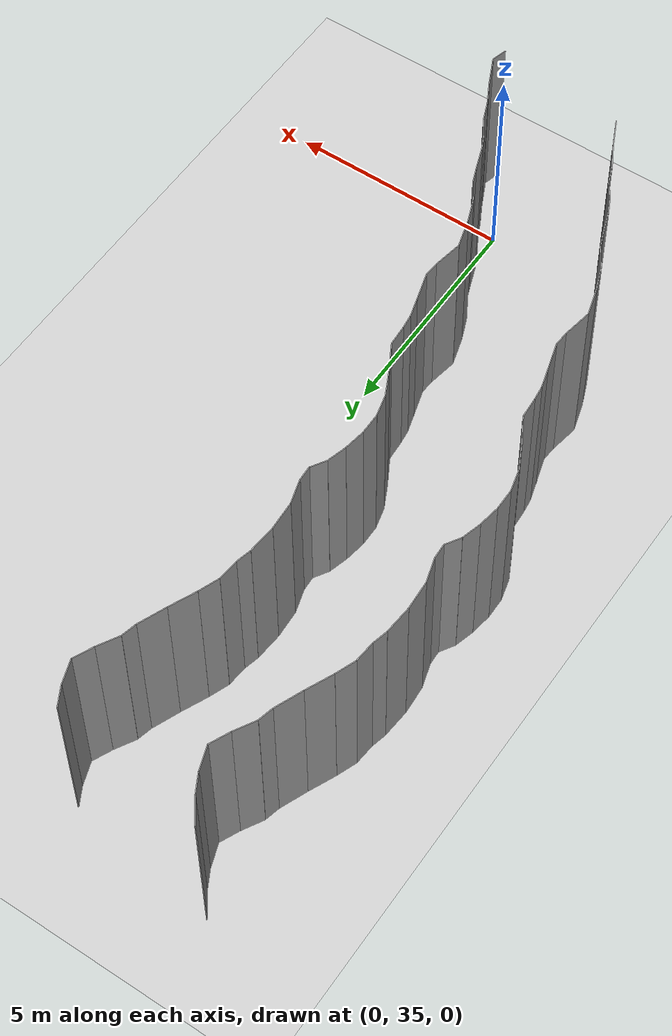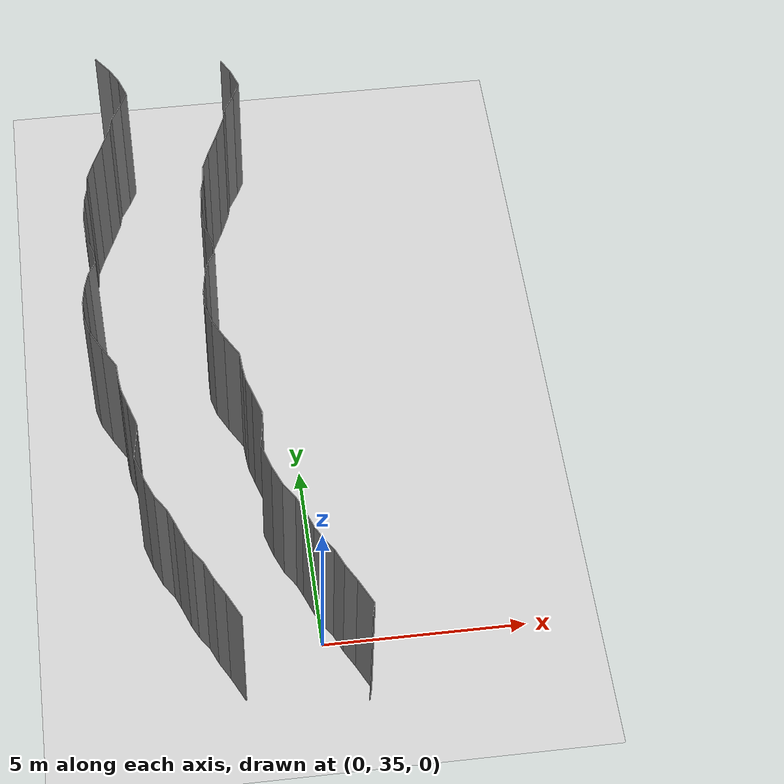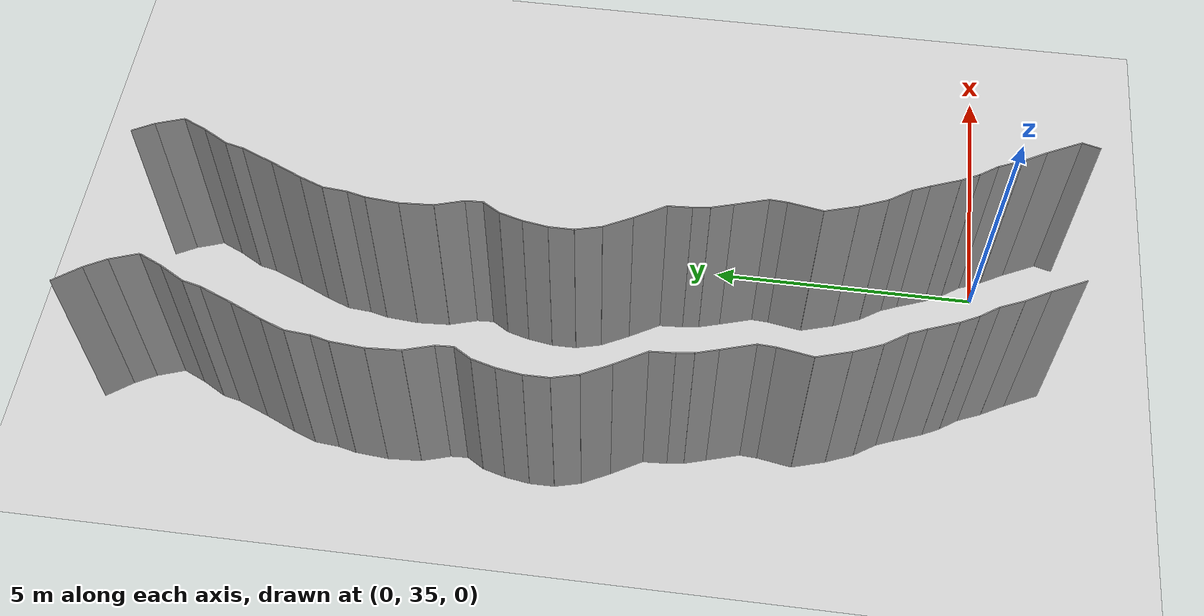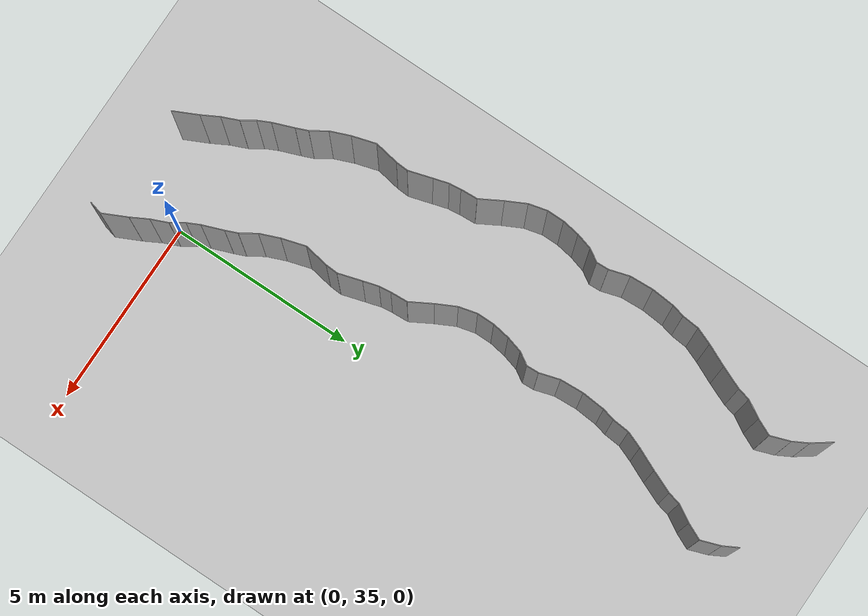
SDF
<sdf version="1.6">
 <world name="default">
  <model name="ground_plane">
   <static>1</static>
   <link name="link">
    <collision name="collision">
     <geometry><plane><normal>0 0 1</normal><size>200 200</size></plane></geometry>
     <surface><friction><ode><mu>100</mu><mu2>50</mu2></ode></friction></surface>
    </collision>
    <visual name="visual">
     <cast_shadows>0</cast_shadows>
     <geometry><plane><normal>0 0 1</normal><size>200 200</size></plane></geometry>
     <material>
      <script><uri>file://media/materials/scripts/gazebo.material</uri><name>Gazebo/Grey</name></script>
     </material>
    </visual>
   </link>
   <pose>0 100 0 0 -0 0</pose>
  </model>
  <model name="wall_149">
   <static>1</static>
   <pose>0.9881427926999038 33.55073530533225 2 0 0 -0.2570809462388972</pose>
   <link name="link">
    <collision name="collision"><geometry><box><size>0.02 0.351446563598 4</size></box></geometry></collision>
    <visual name="visual">
     <material>
      <script><name>Gazebo/Grey</name><uri>file://media/materials/scripts/gazebo.material</uri></script>
     </material>
     <geometry><box><size>0.02 0.351446563598 4</size></box></geometry>
    </visual>
   </link>
  </model>
  <model name="wall_150">
   <static>1</static>
   <pose>-2.1199859961516934 34.03507222280269 2 0 0 0.4524238444799643</pose>
   <link name="link">
    <collision name="collision"><geometry><box><size>0.02 0.699114944752 4</size></box></geometry></collision>
    <visual name="visual">
     <material>
      <script><name>Gazebo/Grey</name><uri>file://media/materials/scripts/gazebo.material</uri></script>
     </material>
     <geometry><box><size>0.02 0.699114944752 4</size></box></geometry>
    </visual>
   </link>
  </model>
  <model name="wall_151">
   <static>1</static>
   <pose>0.8800140038483066 34.03507222280269 2 0 0 0.4524238444799643</pose>
   <link name="link">
    <collision name="collision"><geometry><box><size>0.02 0.699114944752 4</size></box></geometry></collision>
    <visual name="visual">
     <material>
      <script><name>Gazebo/Grey</name><uri>file://media/materials/scripts/gazebo.material</uri></script>
     </material>
     <geometry><box><size>0.02 0.699114944752 4</size></box></geometry>
    </visual>
   </link>
  </model>
  <model name="wall_152">
   <static>1</static>
   <pose>-2.393562664950325 34.56891271330489 2 0 0 0.5030886825551388</pose>
   <link name="link">
    <collision name="collision"><geometry><box><size>0.02 0.500976009871 4</size></box></geometry></collision>
    <visual name="visual">
     <material>
      <script><name>Gazebo/Grey</name><uri>file://media/materials/scripts/gazebo.material</uri></script>
     </material>
     <geometry><box><size>0.02 0.500976009871 4</size></box></geometry>
    </visual>
   </link>
  </model>
  <model name="wall_153">
   <static>1</static>
   <pose>0.6064373350496748 34.56891271330489 2 0 0 0.5030886825551388</pose>
   <link name="link">
    <collision name="collision"><geometry><box><size>0.02 0.500976009871 4</size></box></geometry></collision>
    <visual name="visual">
     <material>
      <script><name>Gazebo/Grey</name><uri>file://media/materials/scripts/gazebo.material</uri></script>
     </material>
     <geometry><box><size>0.02 0.500976009871 4</size></box></geometry>
    </visual>
   </link>
  </model>
  <model name="wall_154">
   <static>1</static>
   <pose>-2.606694891788812 35.00484777843814 2 0 0 0.4032711366368982</pose>
   <link name="link">
    <collision name="collision"><geometry><box><size>0.02 0.470726922982 4</size></box></geometry></collision>
    <visual name="visual">
     <material>
      <script><name>Gazebo/Grey</name><uri>file://media/materials/scripts/gazebo.material</uri></script>
     </material>
     <geometry><box><size>0.02 0.470726922982 4</size></box></geometry>
    </visual>
   </link>
  </model>
  <model name="wall_155">
   <static>1</static>
   <pose>0.3933051082111878 35.00484777843814 2 0 0 0.4032711366368982</pose>
   <link name="link">
    <collision name="collision"><geometry><box><size>0.02 0.470726922982 4</size></box></geometry></collision>
    <visual name="visual">
     <material>
      <script><name>Gazebo/Grey</name><uri>file://media/materials/scripts/gazebo.material</uri></script>
     </material>
     <geometry><box><size>0.02 0.470726922982 4</size></box></geometry>
    </visual>
   </link>
  </model>
  <model name="wall_156">
   <static>1</static>
   <pose>-2.8125337059370685 35.38882786084507 2 0 0 0.5954493578572179</pose>
   <link name="link">
    <collision name="collision"><geometry><box><size>0.02 0.404632569632 4</size></box></geometry></collision>
    <visual name="visual">
     <material>
      <script><name>Gazebo/Grey</name><uri>file://media/materials/scripts/gazebo.material</uri></script>
     </material>
     <geometry><box><size>0.02 0.404632569632 4</size></box></geometry>
    </visual>
   </link>
  </model>
  <model name="wall_157">
   <static>1</static>
   <pose>0.18746629406293147 35.38882786084507 2 0 0 0.5954493578572179</pose>
   <link name="link">
    <collision name="collision"><geometry><box><size>0.02 0.404632569632 4</size></box></geometry></collision>
    <visual name="visual">
     <material>
      <script><name>Gazebo/Grey</name><uri>file://media/materials/scripts/gazebo.material</uri></script>
     </material>
     <geometry><box><size>0.02 0.404632569632 4</size></box></geometry>
    </visual>
   </link>
  </model>
  <model name="wall_158">
   <static>1</static>
   <pose>-3.006206348246915 35.71882686516212 2 0 0 0.4584467388995591</pose>
   <link name="link">
    <collision name="collision"><geometry><box><size>0.02 0.36242806749 4</size></box></geometry></collision>
    <visual name="visual">
     <material>
      <script><name>Gazebo/Grey</name><uri>file://media/materials/scripts/gazebo.material</uri></script>
     </material>
     <geometry><box><size>0.02 0.36242806749 4</size></box></geometry>
    </visual>
   </link>
  </model>
  <model name="wall_159">
   <static>1</static>
   <pose>-0.006206348246915017 35.71882686516212 2 0 0 0.4584467388995591</pose>
   <link name="link">
    <collision name="collision"><geometry><box><size>0.02 0.36242806749 4</size></box></geometry></collision>
    <visual name="visual">
     <material>
      <script><name>Gazebo/Grey</name><uri>file://media/materials/scripts/gazebo.material</uri></script>
     </material>
     <geometry><box><size>0.02 0.36242806749 4</size></box></geometry>
    </visual>
   </link>
  </model>
  <model name="wall_160">
   <static>1</static>
   <pose>-3.1899112311044293 36.154948247174794 2 0 0 0.3616522814091052</pose>
   <link name="link">
    <collision name="collision"><geometry><box><size>0.02 0.585085822002 4</size></box></geometry></collision>
    <visual name="visual">
     <material>
      <script><name>Gazebo/Grey</name><uri>file://media/materials/scripts/gazebo.material</uri></script>
     </material>
     <geometry><box><size>0.02 0.585085822002 4</size></box></geometry>
    </visual>
   </link>
  </model>
  <model name="wall_161">
   <static>1</static>
   <pose>-0.1899112311044293 36.154948247174794 2 0 0 0.3616522814091052</pose>
   <link name="link">
    <collision name="collision"><geometry><box><size>0.02 0.585085822002 4</size></box></geometry></collision>
    <visual name="visual">
     <material>
      <script><name>Gazebo/Grey</name><uri>file://media/materials/scripts/gazebo.material</uri></script>
     </material>
     <geometry><box><size>0.02 0.585085822002 4</size></box></geometry>
    </visual>
   </link>
  </model>
  <model name="wall_162">
   <static>1</static>
   <pose>-3.357015611934183 36.582454859513454 2 0 0 0.3918924178580606</pose>
   <link name="link">
    <collision name="collision"><geometry><box><size>0.02 0.333021621268 4</size></box></geometry></collision>
    <visual name="visual">
     <material>
      <script><name>Gazebo/Grey</name><uri>file://media/materials/scripts/gazebo.material</uri></script>
     </material>
     <geometry><box><size>0.02 0.333021621268 4</size></box></geometry>
    </visual>
   </link>
  </model>
  <model name="wall_163">
   <static>1</static>
   <pose>-0.35701561193418296 36.582454859513454 2 0 0 0.3918924178580606</pose>
   <link name="link">
    <collision name="collision"><geometry><box><size>0.02 0.333021621268 4</size></box></geometry></collision>
    <visual name="visual">
     <material>
      <script><name>Gazebo/Grey</name><uri>file://media/materials/scripts/gazebo.material</uri></script>
     </material>
     <geometry><box><size>0.02 0.333021621268 4</size></box></geometry>
    </visual>
   </link>
  </model>
  <model name="wall_164">
   <static>1</static>
   <pose>-3.552840360431091 36.93900870756451 2 0 0 0.5780891512333</pose>
   <link name="link">
    <collision name="collision"><geometry><box><size>0.02 0.483975057196 4</size></box></geometry></collision>
    <visual name="visual">
     <material>
      <script><name>Gazebo/Grey</name><uri>file://media/materials/scripts/gazebo.material</uri></script>
     </material>
     <geometry><box><size>0.02 0.483975057196 4</size></box></geometry>
    </visual>
   </link>
  </model>
  <model name="wall_165">
   <static>1</static>
   <pose>-0.552840360431091 36.93900870756451 2 0 0 0.5780891512333</pose>
   <link name="link">
    <collision name="collision"><geometry><box><size>0.02 0.483975057196 4</size></box></geometry></collision>
    <visual name="visual">
     <material>
      <script><name>Gazebo/Grey</name><uri>file://media/materials/scripts/gazebo.material</uri></script>
     </material>
     <geometry><box><size>0.02 0.483975057196 4</size></box></geometry>
    </visual>
   </link>
  </model>
  <model name="wall_166">
   <static>1</static>
   <pose>-3.788069837768711 37.39665629757938 2 0 0 0.38391350798223306</pose>
   <link name="link">
    <collision name="collision"><geometry><box><size>0.02 0.549998690865 4</size></box></geometry></collision>
    <visual name="visual">
     <material>
      <script><name>Gazebo/Grey</name><uri>file://media/materials/scripts/gazebo.material</uri></script>
     </material>
     <geometry><box><size>0.02 0.549998690865 4</size></box></geometry>
    </visual>
   </link>
  </model>
  <model name="wall_167">
   <static>1</static>
   <pose>-0.788069837768711 37.39665629757938 2 0 0 0.38391350798223306</pose>
   <link name="link">
    <collision name="collision"><geometry><box><size>0.02 0.549998690865 4</size></box></geometry></collision>
    <visual name="visual">
     <material>
      <script><name>Gazebo/Grey</name><uri>file://media/materials/scripts/gazebo.material</uri></script>
     </material>
     <geometry><box><size>0.02 0.549998690865 4</size></box></geometry>
    </visual>
   </link>
  </model>
  <model name="wall_168">
   <static>1</static>
   <pose>-3.982984754541868 37.96073117305342 2 0 0 0.2890366641505498</pose>
   <link name="link">
    <collision name="collision"><geometry><box><size>0.02 0.64494054875 4</size></box></geometry></collision>
    <visual name="visual">
     <material>
      <script><name>Gazebo/Grey</name><uri>file://media/materials/scripts/gazebo.material</uri></script>
     </material>
     <geometry><box><size>0.02 0.64494054875 4</size></box></geometry>
    </visual>
   </link>
  </model>
  <model name="wall_169">
   <static>1</static>
   <pose>-0.9829847545418682 37.96073117305342 2 0 0 0.2890366641505498</pose>
   <link name="link">
    <collision name="collision"><geometry><box><size>0.02 0.64494054875 4</size></box></geometry></collision>
    <visual name="visual">
     <material>
      <script><name>Gazebo/Grey</name><uri>file://media/materials/scripts/gazebo.material</uri></script>
     </material>
     <geometry><box><size>0.02 0.64494054875 4</size></box></geometry>
    </visual>
   </link>
  </model>
  <model name="wall_170">
   <static>1</static>
   <pose>-4.020530859967856 38.59331555278718 2 0 0 -0.16650840684087173</pose>
   <link name="link">
    <collision name="collision"><geometry><box><size>0.02 0.656054635602 4</size></box></geometry></collision>
    <visual name="visual">
     <material>
      <script><name>Gazebo/Grey</name><uri>file://media/materials/scripts/gazebo.material</uri></script>
     </material>
     <geometry><box><size>0.02 0.656054635602 4</size></box></geometry>
    </visual>
   </link>
  </model>
  <model name="wall_171">
   <static>1</static>
   <pose>-1.020530859967856 38.59331555278718 2 0 0 -0.16650840684087173</pose>
   <link name="link">
    <collision name="collision"><geometry><box><size>0.02 0.656054635602 4</size></box></geometry></collision>
    <visual name="visual">
     <material>
      <script><name>Gazebo/Grey</name><uri>file://media/materials/scripts/gazebo.material</uri></script>
     </material>
     <geometry><box><size>0.02 0.656054635602 4</size></box></geometry>
    </visual>
   </link>
  </model>
  <model name="wall_172">
   <static>1</static>
   <pose>-3.957272927944063 39.07762225691756 2 0 0 -0.055228413160303275</pose>
   <link name="link">
    <collision name="collision"><geometry><box><size>0.02 0.322123495496 4</size></box></geometry></collision>
    <visual name="visual">
     <material>
      <script><name>Gazebo/Grey</name><uri>file://media/materials/scripts/gazebo.material</uri></script>
     </material>
     <geometry><box><size>0.02 0.322123495496 4</size></box></geometry>
    </visual>
   </link>
  </model>
  <model name="wall_173">
   <static>1</static>
   <pose>-0.957272927944063 39.07762225691756 2 0 0 -0.055228413160303275</pose>
   <link name="link">
    <collision name="collision"><geometry><box><size>0.02 0.322123495496 4</size></box></geometry></collision>
    <visual name="visual">
     <material>
      <script><name>Gazebo/Grey</name><uri>file://media/materials/scripts/gazebo.material</uri></script>
     </material>
     <geometry><box><size>0.02 0.322123495496 4</size></box></geometry>
    </visual>
   </link>
  </model>
  <model name="wall_174">
   <static>1</static>
   <pose>-4.041034677507834 39.54683551900046 2 0 0 0.2918532556658118</pose>
   <link name="link">
    <collision name="collision"><geometry><box><size>0.02 0.644028669878 4</size></box></geometry></collision>
    <visual name="visual">
     <material>
      <script><name>Gazebo/Grey</name><uri>file://media/materials/scripts/gazebo.material</uri></script>
     </material>
     <geometry><box><size>0.02 0.644028669878 4</size></box></geometry>
    </visual>
   </link>
  </model>
  <model name="wall_175">
   <static>1</static>
   <pose>-1.0410346775078336 39.54683551900046 2 0 0 0.2918532556658118</pose>
   <link name="link">
    <collision name="collision"><geometry><box><size>0.02 0.644028669878 4</size></box></geometry></collision>
    <visual name="visual">
     <material>
      <script><name>Gazebo/Grey</name><uri>file://media/materials/scripts/gazebo.material</uri></script>
     </material>
     <geometry><box><size>0.02 0.644028669878 4</size></box></geometry>
    </visual>
   </link>
  </model>
  <model name="wall_176">
   <static>1</static>
   <pose>-4.192084598840093 40.05443277690268 2 0 0 0.2851697461740518</pose>
   <link name="link">
    <collision name="collision"><geometry><box><size>0.02 0.415167328733 4</size></box></geometry></collision>
    <visual name="visual">
     <material>
      <script><name>Gazebo/Grey</name><uri>file://media/materials/scripts/gazebo.material</uri></script>
     </material>
     <geometry><box><size>0.02 0.415167328733 4</size></box></geometry>
    </visual>
   </link>
  </model>
  <model name="wall_177">
   <static>1</static>
   <pose>-1.1920845988400934 40.05443277690268 2 0 0 0.2851697461740518</pose>
   <link name="link">
    <collision name="collision"><geometry><box><size>0.02 0.415167328733 4</size></box></geometry></collision>
    <visual name="visual">
     <material>
      <script><name>Gazebo/Grey</name><uri>file://media/materials/scripts/gazebo.material</uri></script>
     </material>
     <geometry><box><size>0.02 0.415167328733 4</size></box></geometry>
    </visual>
   </link>
  </model>
  <model name="wall_178">
   <static>1</static>
   <pose>-4.270150940953661 40.4105312934876 2 0 0 0.12470980048638405</pose>
   <link name="link">
    <collision name="collision"><geometry><box><size>0.02 0.31625276847 4</size></box></geometry></collision>
    <visual name="visual">
     <material>
      <script><name>Gazebo/Grey</name><uri>file://media/materials/scripts/gazebo.material</uri></script>
     </material>
     <geometry><box><size>0.02 0.31625276847 4</size></box></geometry>
    </visual>
   </link>
  </model>
  <model name="wall_179">
   <static>1</static>
   <pose>-1.2701509409536609 40.4105312934876 2 0 0 0.12470980048638405</pose>
   <link name="link">
    <collision name="collision"><geometry><box><size>0.02 0.31625276847 4</size></box></geometry></collision>
    <visual name="visual">
     <material>
      <script><name>Gazebo/Grey</name><uri>file://media/materials/scripts/gazebo.material</uri></script>
     </material>
     <geometry><box><size>0.02 0.31625276847 4</size></box></geometry>
    </visual>
   </link>
  </model>
  <model name="wall_180">
   <static>1</static>
   <pose>-4.303651819095543 40.79109403262944 2 0 0 0.06176419345149802</pose>
   <link name="link">
    <collision name="collision"><geometry><box><size>0.02 0.448183386925 4</size></box></geometry></collision>
    <visual name="visual">
     <material>
      <script><name>Gazebo/Grey</name><uri>file://media/materials/scripts/gazebo.material</uri></script>
     </material>
     <geometry><box><size>0.02 0.448183386925 4</size></box></geometry>
    </visual>
   </link>
  </model>
  <model name="wall_181">
   <static>1</static>
   <pose>-1.3036518190955428 40.79109403262944 2 0 0 0.06176419345149802</pose>
   <link name="link">
    <collision name="collision"><geometry><box><size>0.02 0.448183386925 4</size></box></geometry></collision>
    <visual name="visual">
     <material>
      <script><name>Gazebo/Grey</name><uri>file://media/materials/scripts/gazebo.material</uri></script>
     </material>
     <geometry><box><size>0.02 0.448183386925 4</size></box></geometry>
    </visual>
   </link>
  </model>
  <model name="wall_182">
   <static>1</static>
   <pose>-4.479827330198589 41.298478551855204 2 0 0 0.5197243043052254</pose>
   <link name="link">
    <collision name="collision"><geometry><box><size>0.02 0.653766043913 4</size></box></geometry></collision>
    <visual name="visual">
     <material>
      <script><name>Gazebo/Grey</name><uri>file://media/materials/scripts/gazebo.material</uri></script>
     </material>
     <geometry><box><size>0.02 0.653766043913 4</size></box></geometry>
    </visual>
   </link>
  </model>
  <model name="wall_183">
   <static>1</static>
   <pose>-1.4798273301985887 41.298478551855204 2 0 0 0.5197243043052254</pose>
   <link name="link">
    <collision name="collision"><geometry><box><size>0.02 0.653766043913 4</size></box></geometry></collision>
    <visual name="visual">
     <material>
      <script><name>Gazebo/Grey</name><uri>file://media/materials/scripts/gazebo.material</uri></script>
     </material>
     <geometry><box><size>0.02 0.653766043913 4</size></box></geometry>
    </visual>
   </link>
  </model>
  <model name="wall_184">
   <static>1</static>
   <pose>-4.7724770303118715 41.838417724788464 2 0 0 0.4704829076977436</pose>
   <link name="link">
    <collision name="collision"><geometry><box><size>0.02 0.57490143647 4</size></box></geometry></collision>
    <visual name="visual">
     <material>
      <script><name>Gazebo/Grey</name><uri>file://media/materials/scripts/gazebo.material</uri></script>
     </material>
     <geometry><box><size>0.02 0.57490143647 4</size></box></geometry>
    </visual>
   </link>
  </model>
  <model name="wall_185">
   <static>1</static>
   <pose>-1.7724770303118715 41.838417724788464 2 0 0 0.4704829076977436</pose>
   <link name="link">
    <collision name="collision"><geometry><box><size>0.02 0.57490143647 4</size></box></geometry></collision>
    <visual name="visual">
     <material>
      <script><name>Gazebo/Grey</name><uri>file://media/materials/scripts/gazebo.material</uri></script>
     </material>
     <geometry><box><size>0.02 0.57490143647 4</size></box></geometry>
    </visual>
   </link>
  </model>
  <model name="wall_186">
   <static>1</static>
   <pose>-4.964001399339858 42.33403192623361 2 0 0 0.25035493327031966</pose>
   <link name="link">
    <collision name="collision"><geometry><box><size>0.02 0.494197123625 4</size></box></geometry></collision>
    <visual name="visual">
     <material>
      <script><name>Gazebo/Grey</name><uri>file://media/materials/scripts/gazebo.material</uri></script>
     </material>
     <geometry><box><size>0.02 0.494197123625 4</size></box></geometry>
    </visual>
   </link>
  </model>
  <model name="wall_187">
   <static>1</static>
   <pose>-1.9640013993398577 42.33403192623361 2 0 0 0.25035493327031966</pose>
   <link name="link">
    <collision name="collision"><geometry><box><size>0.02 0.494197123625 4</size></box></geometry></collision>
    <visual name="visual">
     <material>
      <script><name>Gazebo/Grey</name><uri>file://media/materials/scripts/gazebo.material</uri></script>
     </material>
     <geometry><box><size>0.02 0.494197123625 4</size></box></geometry>
    </visual>
   </link>
  </model>
  <model name="wall_188">
   <static>1</static>
   <pose>-5.026448728286464 42.80450628569534 2 0 0 0.005319308876662457</pose>
   <link name="link">
    <collision name="collision"><geometry><box><size>0.02 0.46216495209 4</size></box></geometry></collision>
    <visual name="visual">
     <material>
      <script><name>Gazebo/Grey</name><uri>file://media/materials/scripts/gazebo.material</uri></script>
     </material>
     <geometry><box><size>0.02 0.46216495209 4</size></box></geometry>
    </visual>
   </link>
  </model>
  <model name="wall_189">
   <static>1</static>
   <pose>-2.0264487282864643 42.80450628569534 2 0 0 0.005319308876662457</pose>
   <link name="link">
    <collision name="collision"><geometry><box><size>0.02 0.46216495209 4</size></box></geometry></collision>
    <visual name="visual">
     <material>
      <script><name>Gazebo/Grey</name><uri>file://media/materials/scripts/gazebo.material</uri></script>
     </material>
     <geometry><box><size>0.02 0.46216495209 4</size></box></geometry>
    </visual>
   </link>
  </model>
  <model name="wall_190">
   <static>1</static>
   <pose>-4.99145490060217 43.268151554785206 2 0 0 -0.15451221751109798</pose>
   <link name="link">
    <collision name="collision"><geometry><box><size>0.02 0.470740185547 4</size></box></geometry></collision>
    <visual name="visual">
     <material>
      <script><name>Gazebo/Grey</name><uri>file://media/materials/scripts/gazebo.material</uri></script>
     </material>
     <geometry><box><size>0.02 0.470740185547 4</size></box></geometry>
    </visual>
   </link>
  </model>
  <model name="wall_191">
   <static>1</static>
   <pose>-1.9914549006021698 43.268151554785206 2 0 0 -0.15451221751109798</pose>
   <link name="link">
    <collision name="collision"><geometry><box><size>0.02 0.470740185547 4</size></box></geometry></collision>
    <visual name="visual">
     <material>
      <script><name>Gazebo/Grey</name><uri>file://media/materials/scripts/gazebo.material</uri></script>
     </material>
     <geometry><box><size>0.02 0.470740185547 4</size></box></geometry>
    </visual>
   </link>
  </model>
  <model name="wall_192">
   <static>1</static>
   <pose>-4.896239606016891 43.71426239648721 2 0 0 -0.2695302527752205</pose>
   <link name="link">
    <collision name="collision"><geometry><box><size>0.02 0.443086723637 4</size></box></geometry></collision>
    <visual name="visual">
     <material>
      <script><name>Gazebo/Grey</name><uri>file://media/materials/scripts/gazebo.material</uri></script>
     </material>
     <geometry><box><size>0.02 0.443086723637 4</size></box></geometry>
    </visual>
   </link>
  </model>
  <model name="wall_193">
   <static>1</static>
   <pose>-1.8962396060168913 43.71426239648721 2 0 0 -0.2695302527752205</pose>
   <link name="link">
    <collision name="collision"><geometry><box><size>0.02 0.443086723637 4</size></box></geometry></collision>
    <visual name="visual">
     <material>
      <script><name>Gazebo/Grey</name><uri>file://media/materials/scripts/gazebo.material</uri></script>
     </material>
     <geometry><box><size>0.02 0.443086723637 4</size></box></geometry>
    </visual>
   </link>
  </model>
  <model name="wall_194">
   <static>1</static>
   <pose>-4.739578070606712 44.086898648561856 2 0 0 -0.5505911709922717</pose>
   <link name="link">
    <collision name="collision"><geometry><box><size>0.02 0.3733597802 4</size></box></geometry></collision>
    <visual name="visual">
     <material>
      <script><name>Gazebo/Grey</name><uri>file://media/materials/scripts/gazebo.material</uri></script>
     </material>
     <geometry><box><size>0.02 0.3733597802 4</size></box></geometry>
    </visual>
   </link>
  </model>
  <model name="wall_195">
   <static>1</static>
   <pose>-1.7395780706067123 44.086898648561856 2 0 0 -0.5505911709922717</pose>
   <link name="link">
    <collision name="collision"><geometry><box><size>0.02 0.3733597802 4</size></box></geometry></collision>
    <visual name="visual">
     <material>
      <script><name>Gazebo/Grey</name><uri>file://media/materials/scripts/gazebo.material</uri></script>
     </material>
     <geometry><box><size>0.02 0.3733597802 4</size></box></geometry>
    </visual>
   </link>
  </model>
  <model name="wall_196">
   <static>1</static>
   <pose>-4.650237301759637 44.40789302243993 2 0 0 0.05139597999174555</pose>
   <link name="link">
    <collision name="collision"><geometry><box><size>0.02 0.324233947755 4</size></box></geometry></collision>
    <visual name="visual">
     <material>
      <script><name>Gazebo/Grey</name><uri>file://media/materials/scripts/gazebo.material</uri></script>
     </material>
     <geometry><box><size>0.02 0.324233947755 4</size></box></geometry>
    </visual>
   </link>
  </model>
  <model name="wall_197">
   <static>1</static>
   <pose>-1.6502373017596366 44.40789302243993 2 0 0 0.05139597999174555</pose>
   <link name="link">
    <collision name="collision"><geometry><box><size>0.02 0.324233947755 4</size></box></geometry></collision>
    <visual name="visual">
     <material>
      <script><name>Gazebo/Grey</name><uri>file://media/materials/scripts/gazebo.material</uri></script>
     </material>
     <geometry><box><size>0.02 0.324233947755 4</size></box></geometry>
    </visual>
   </link>
  </model>
  <model name="wall_198">
   <static>1</static>
   <pose>-4.738164171985011 44.83379673570082 2 0 0 0.2928397768979898</pose>
   <link name="link">
    <collision name="collision"><geometry><box><size>0.02 0.551479212388 4</size></box></geometry></collision>
    <visual name="visual">
     <material>
      <script><name>Gazebo/Grey</name><uri>file://media/materials/scripts/gazebo.material</uri></script>
     </material>
     <geometry><box><size>0.02 0.551479212388 4</size></box></geometry>
    </visual>
   </link>
  </model>
  <model name="wall_199">
   <static>1</static>
   <pose>-1.7381641719850114 44.83379673570082 2 0 0 0.2928397768979898</pose>
   <link name="link">
    <collision name="collision"><geometry><box><size>0.02 0.551479212388 4</size></box></geometry></collision>
    <visual name="visual">
     <material>
      <script><name>Gazebo/Grey</name><uri>file://media/materials/scripts/gazebo.material</uri></script>
     </material>
     <geometry><box><size>0.02 0.551479212388 4</size></box></geometry>
    </visual>
   </link>
  </model>
  <model name="wall_200">
   <static>1</static>
   <pose>-4.835808594323409 45.410081411502134 2 0 0 0.05772311602939947</pose>
   <link name="link">
    <collision name="collision"><geometry><box><size>0.02 0.625609690811 4</size></box></geometry></collision>
    <visual name="visual">
     <material>
      <script><name>Gazebo/Grey</name><uri>file://media/materials/scripts/gazebo.material</uri></script>
     </material>
     <geometry><box><size>0.02 0.625609690811 4</size></box></geometry>
    </visual>
   </link>
  </model>
  <model name="wall_201">
   <static>1</static>
   <pose>-1.8358085943234093 45.410081411502134 2 0 0 0.05772311602939947</pose>
   <link name="link">
    <collision name="collision"><geometry><box><size>0.02 0.625609690811 4</size></box></geometry></collision>
    <visual name="visual">
     <material>
      <script><name>Gazebo/Grey</name><uri>file://media/materials/scripts/gazebo.material</uri></script>
     </material>
     <geometry><box><size>0.02 0.625609690811 4</size></box></geometry>
    </visual>
   </link>
  </model>
  <model name="wall_202">
   <static>1</static>
   <pose>-4.829041402959801 46.031115190087526 2 0 0 -0.08019442237683332</pose>
   <link name="link">
    <collision name="collision"><geometry><box><size>0.02 0.619490779926 4</size></box></geometry></collision>
    <visual name="visual">
     <material>
      <script><name>Gazebo/Grey</name><uri>file://media/materials/scripts/gazebo.material</uri></script>
     </material>
     <geometry><box><size>0.02 0.619490779926 4</size></box></geometry>
    </visual>
   </link>
  </model>
  <model name="wall_203">
   <static>1</static>
   <pose>-1.8290414029598008 46.031115190087526 2 0 0 -0.08019442237683332</pose>
   <link name="link">
    <collision name="collision"><geometry><box><size>0.02 0.619490779926 4</size></box></geometry></collision>
    <visual name="visual">
     <material>
      <script><name>Gazebo/Grey</name><uri>file://media/materials/scripts/gazebo.material</uri></script>
     </material>
     <geometry><box><size>0.02 0.619490779926 4</size></box></geometry>
    </visual>
   </link>
  </model>
  <model name="wall_204">
   <static>1</static>
   <pose>-4.7640557336427 46.50713692384454 2 0 0 -0.2356987078806472</pose>
   <link name="link">
    <collision name="collision"><geometry><box><size>0.02 0.344056308042 4</size></box></geometry></collision>
    <visual name="visual">
     <material>
      <script><name>Gazebo/Grey</name><uri>file://media/materials/scripts/gazebo.material</uri></script>
     </material>
     <geometry><box><size>0.02 0.344056308042 4</size></box></geometry>
    </visual>
   </link>
  </model>
  <model name="wall_205">
   <static>1</static>
   <pose>-1.7640557336427003 46.50713692384454 2 0 0 -0.2356987078806472</pose>
   <link name="link">
    <collision name="collision"><geometry><box><size>0.02 0.344056308042 4</size></box></geometry></collision>
    <visual name="visual">
     <material>
      <script><name>Gazebo/Grey</name><uri>file://media/materials/scripts/gazebo.material</uri></script>
     </material>
     <geometry><box><size>0.02 0.344056308042 4</size></box></geometry>
    </visual>
   </link>
  </model>
  <model name="wall_206">
   <static>1</static>
   <pose>-4.704041260362949 46.90350678208243 2 0 0 -0.08639379713773104</pose>
   <link name="link">
    <collision name="collision"><geometry><box><size>0.02 0.459911374846 4</size></box></geometry></collision>
    <visual name="visual">
     <material>
      <script><name>Gazebo/Grey</name><uri>file://media/materials/scripts/gazebo.material</uri></script>
     </material>
     <geometry><box><size>0.02 0.459911374846 4</size></box></geometry>
    </visual>
   </link>
  </model>
  <model name="wall_207">
   <static>1</static>
   <pose>-1.7040412603629491 46.90350678208243 2 0 0 -0.08639379713773104</pose>
   <link name="link">
    <collision name="collision"><geometry><box><size>0.02 0.459911374846 4</size></box></geometry></collision>
    <visual name="visual">
     <material>
      <script><name>Gazebo/Grey</name><uri>file://media/materials/scripts/gazebo.material</uri></script>
     </material>
     <geometry><box><size>0.02 0.459911374846 4</size></box></geometry>
    </visual>
   </link>
  </model>
  <model name="wall_208">
   <static>1</static>
   <pose>-4.600713327098332 47.351367507673814 2 0 0 -0.3645685264371904</pose>
   <link name="link">
    <collision name="collision"><geometry><box><size>0.02 0.468303351364 4</size></box></geometry></collision>
    <visual name="visual">
     <material>
      <script><name>Gazebo/Grey</name><uri>file://media/materials/scripts/gazebo.material</uri></script>
     </material>
     <geometry><box><size>0.02 0.468303351364 4</size></box></geometry>
    </visual>
   </link>
  </model>
  <model name="wall_209">
   <static>1</static>
   <pose>-1.6007133270983323 47.351367507673814 2 0 0 -0.3645685264371904</pose>
   <link name="link">
    <collision name="collision"><geometry><box><size>0.02 0.468303351364 4</size></box></geometry></collision>
    <visual name="visual">
     <material>
      <script><name>Gazebo/Grey</name><uri>file://media/materials/scripts/gazebo.material</uri></script>
     </material>
     <geometry><box><size>0.02 0.468303351364 4</size></box></geometry>
    </visual>
   </link>
  </model>
  <model name="wall_210">
   <static>1</static>
   <pose>-4.38767704307582 47.85898097856505 2 0 0 -0.4216081717436444</pose>
   <link name="link">
    <collision name="collision"><geometry><box><size>0.02 0.633144784727 4</size></box></geometry></collision>
    <visual name="visual">
     <material>
      <script><name>Gazebo/Grey</name><uri>file://media/materials/scripts/gazebo.material</uri></script>
     </material>
     <geometry><box><size>0.02 0.633144784727 4</size></box></geometry>
    </visual>
   </link>
  </model>
  <model name="wall_211">
   <static>1</static>
   <pose>-1.3876770430758203 47.85898097856505 2 0 0 -0.4216081717436444</pose>
   <link name="link">
    <collision name="collision"><geometry><box><size>0.02 0.633144784727 4</size></box></geometry></collision>
    <visual name="visual">
     <material>
      <script><name>Gazebo/Grey</name><uri>file://media/materials/scripts/gazebo.material</uri></script>
     </material>
     <geometry><box><size>0.02 0.633144784727 4</size></box></geometry>
    </visual>
   </link>
  </model>
  <model name="wall_212">
   <static>1</static>
   <pose>-4.135696938539679 48.44567937593399 2 0 0 -0.38999422187530564</pose>
   <link name="link">
    <collision name="collision"><geometry><box><size>0.02 0.644056628429 4</size></box></geometry></collision>
    <visual name="visual">
     <material>
      <script><name>Gazebo/Grey</name><uri>file://media/materials/scripts/gazebo.material</uri></script>
     </material>
     <geometry><box><size>0.02 0.644056628429 4</size></box></geometry>
    </visual>
   </link>
  </model>
  <model name="wall_213">
   <static>1</static>
   <pose>-1.1356969385396791 48.44567937593399 2 0 0 -0.38999422187530564</pose>
   <link name="link">
    <collision name="collision"><geometry><box><size>0.02 0.644056628429 4</size></box></geometry></collision>
    <visual name="visual">
     <material>
      <script><name>Gazebo/Grey</name><uri>file://media/materials/scripts/gazebo.material</uri></script>
     </material>
     <geometry><box><size>0.02 0.644056628429 4</size></box></geometry>
    </visual>
   </link>
  </model>
  <model name="wall_214">
   <static>1</static>
   <pose>-3.9738250927281618 48.91135411287269 2 0 0 -0.23082753513769655</pose>
   <link name="link">
    <collision name="collision"><geometry><box><size>0.02 0.344799219352 4</size></box></geometry></collision>
    <visual name="visual">
     <material>
      <script><name>Gazebo/Grey</name><uri>file://media/materials/scripts/gazebo.material</uri></script>
     </material>
     <geometry><box><size>0.02 0.344799219352 4</size></box></geometry>
    </visual>
   </link>
  </model>
  <model name="wall_215">
   <static>1</static>
   <pose>-0.9738250927281618 48.91135411287269 2 0 0 -0.23082753513769655</pose>
   <link name="link">
    <collision name="collision"><geometry><box><size>0.02 0.344799219352 4</size></box></geometry></collision>
    <visual name="visual">
     <material>
      <script><name>Gazebo/Grey</name><uri>file://media/materials/scripts/gazebo.material</uri></script>
     </material>
     <geometry><box><size>0.02 0.344799219352 4</size></box></geometry>
    </visual>
   </link>
  </model>
  <model name="wall_216">
   <static>1</static>
   <pose>-3.807013065804996 49.30223295928637 2 0 0 -0.5188478648269286</pose>
   <link name="link">
    <collision name="collision"><geometry><box><size>0.02 0.51371260769 4</size></box></geometry></collision>
    <visual name="visual">
     <material>
      <script><name>Gazebo/Grey</name><uri>file://media/materials/scripts/gazebo.material</uri></script>
     </material>
     <geometry><box><size>0.02 0.51371260769 4</size></box></geometry>
    </visual>
   </link>
  </model>
  <model name="wall_217">
   <static>1</static>
   <pose>-0.8070130658049961 49.30223295928637 2 0 0 -0.5188478648269286</pose>
   <link name="link">
    <collision name="collision"><geometry><box><size>0.02 0.51371260769 4</size></box></geometry></collision>
    <visual name="visual">
     <material>
      <script><name>Gazebo/Grey</name><uri>file://media/materials/scripts/gazebo.material</uri></script>
     </material>
     <geometry><box><size>0.02 0.51371260769 4</size></box></geometry>
    </visual>
   </link>
  </model>
  <model name="wall_218">
   <static>1</static>
   <pose>-3.5831457443852175 49.73905766167138 2 0 0 -0.42401873718361865</pose>
   <link name="link">
    <collision name="collision"><geometry><box><size>0.02 0.469086944767 4</size></box></geometry></collision>
    <visual name="visual">
     <material>
      <script><name>Gazebo/Grey</name><uri>file://media/materials/scripts/gazebo.material</uri></script>
     </material>
     <geometry><box><size>0.02 0.469086944767 4</size></box></geometry>
    </visual>
   </link>
  </model>
  <model name="wall_219">
   <static>1</static>
   <pose>-0.5831457443852175 49.73905766167138 2 0 0 -0.42401873718361865</pose>
   <link name="link">
    <collision name="collision"><geometry><box><size>0.02 0.469086944767 4</size></box></geometry></collision>
    <visual name="visual">
     <material>
      <script><name>Gazebo/Grey</name><uri>file://media/materials/scripts/gazebo.material</uri></script>
     </material>
     <geometry><box><size>0.02 0.469086944767 4</size></box></geometry>
    </visual>
   </link>
  </model>
  <model name="wall_220">
   <static>1</static>
   <pose>-3.576345126153967 50.20897108413148 2 0 0 0.3368405521491424</pose>
   <link name="link">
    <collision name="collision"><geometry><box><size>0.02 0.542783358904 4</size></box></geometry></collision>
    <visual name="visual">
     <material>
      <script><name>Gazebo/Grey</name><uri>file://media/materials/scripts/gazebo.material</uri></script>
     </material>
     <geometry><box><size>0.02 0.542783358904 4</size></box></geometry>
    </visual>
   </link>
  </model>
  <model name="wall_221">
   <static>1</static>
   <pose>-0.5763451261539672 50.20897108413148 2 0 0 0.3368405521491424</pose>
   <link name="link">
    <collision name="collision"><geometry><box><size>0.02 0.542783358904 4</size></box></geometry></collision>
    <visual name="visual">
     <material>
      <script><name>Gazebo/Grey</name><uri>file://media/materials/scripts/gazebo.material</uri></script>
     </material>
     <geometry><box><size>0.02 0.542783358904 4</size></box></geometry>
    </visual>
   </link>
  </model>
  <model name="wall_222">
   <static>1</static>
   <pose>-3.7736717487836 50.660762060594735 2 0 0 0.5029296164402058</pose>
   <link name="link">
    <collision name="collision"><geometry><box><size>0.02 0.446601873551 4</size></box></geometry></collision>
    <visual name="visual">
     <material>
      <script><name>Gazebo/Grey</name><uri>file://media/materials/scripts/gazebo.material</uri></script>
     </material>
     <geometry><box><size>0.02 0.446601873551 4</size></box></geometry>
    </visual>
   </link>
  </model>
  <model name="wall_223">
   <static>1</static>
   <pose>-0.7736717487835998 50.660762060594735 2 0 0 0.5029296164402058</pose>
   <link name="link">
    <collision name="collision"><geometry><box><size>0.02 0.446601873551 4</size></box></geometry></collision>
    <visual name="visual">
     <material>
      <script><name>Gazebo/Grey</name><uri>file://media/materials/scripts/gazebo.material</uri></script>
     </material>
     <geometry><box><size>0.02 0.446601873551 4</size></box></geometry>
    </visual>
   </link>
  </model>
  <model name="wall_224">
   <static>1</static>
   <pose>-4.053960974131007 51.09263801632883 2 0 0 0.6311708383575996</pose>
   <link name="link">
    <collision name="collision"><geometry><box><size>0.02 0.585196452979 4</size></box></geometry></collision>
    <visual name="visual">
     <material>
      <script><name>Gazebo/Grey</name><uri>file://media/materials/scripts/gazebo.material</uri></script>
     </material>
     <geometry><box><size>0.02 0.585196452979 4</size></box></geometry>
    </visual>
   </link>
  </model>
 </world>
</sdf>
